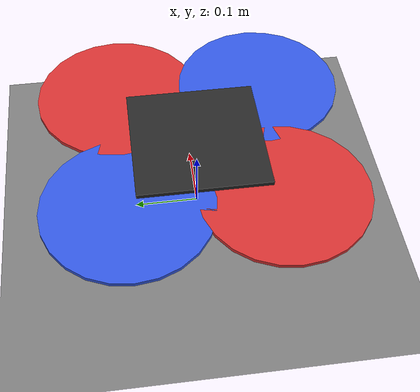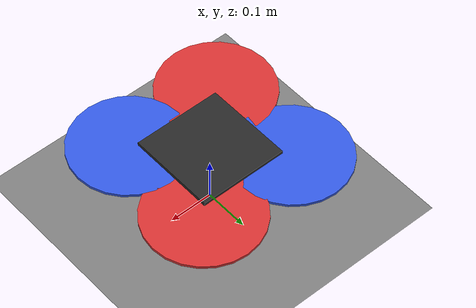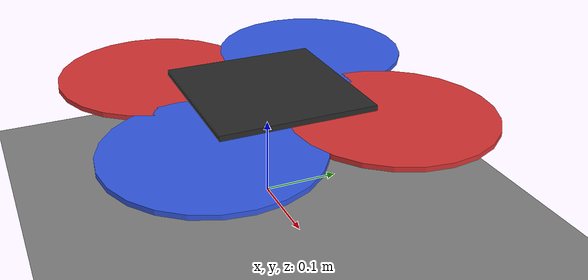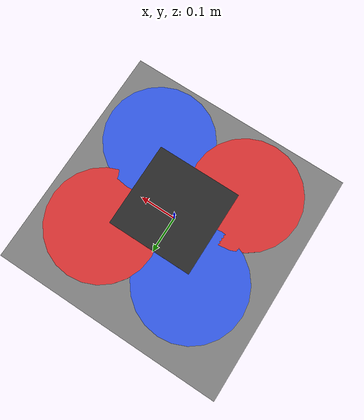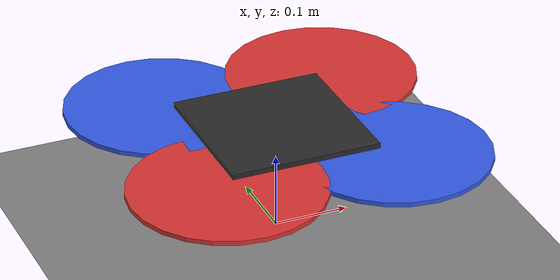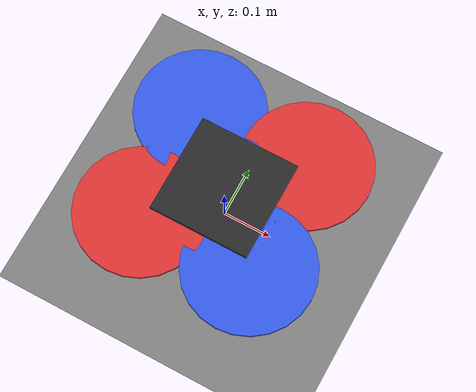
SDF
<?xml version="1.0" ?>
<sdf version="1.9">
  <world name="fx450_qc_0kg">

    <!-- 1 kHz 고정 스텝: 골든 트레이스 기준. 가변 스텝 금지 (PID 이산화가 후방차분). -->
    <physics name="1ms" type="ignored">
      <max_step_size>0.001</max_step_size>
      <real_time_factor>0</real_time_factor>
    </physics>

    <plugin filename="gz-sim-physics-system" name="gz::sim::systems::Physics"/>
    <plugin filename="gz-sim-scene-broadcaster-system" name="gz::sim::systems::SceneBroadcaster"/>
    <plugin filename="gz-sim-user-commands-system" name="gz::sim::systems::UserCommands"/>

    <plugin filename="gz-sim-apply-link-wrench-system" name="gz::sim::systems::ApplyLinkWrench"/>

    <gravity>0 0 -9.81</gravity>
    <light type="directional" name="sun">
      <cast_shadows>true</cast_shadows><pose>0 0 10 0 0 0</pose>
      <diffuse>1 1 1 1</diffuse><specular>0.4 0.4 0.4 1</specular>
      <direction>-0.5 0.1 -0.9</direction>
    </light>

    <model name="ground_plane">
      <static>true</static>
      <link name="link">
        <collision name="collision">
          <geometry><plane><normal>0 0 1</normal><size>80 80</size></plane></geometry>
        </collision>
        <visual name="visual">
          <geometry><plane><normal>0 0 1</normal><size>80 80</size></plane></geometry>
          <material><ambient>0.3 0.3 0.3 1</ambient><diffuse>0.5 0.5 0.5 1</diffuse></material>
        </visual>
      </link>
    </model>

    <model name="fx450">
      <pose>0 0 0.12 0 0 0</pose>
      <link name="base_link">
        <inertial>
          <pose>0 0 0.0077290 0 0 0</pose>
          <mass>1.2726000</mass>
          <inertia>
            <ixx>9.3343219e-03</ixx><iyy>9.3843219e-03</iyy><izz>1.7969498e-02</izz>
            <ixy>0</ixy><ixz>0</ixz><iyz>0</iyz>
          </inertia>
        </inertial>
        <collision name="body_col">
          <geometry><box><size>0.20 0.20 0.06</size></box></geometry>
        </collision>
        <visual name="body">
          <geometry><box><size>0.20 0.20 0.06</size></box></geometry>
          <material><ambient>0.1 0.1 0.1 1</ambient><diffuse>0.16 0.16 0.16 1</diffuse></material>
        </visual>
        <visual name="arm_1">
          <pose>-0.0562 -0.0562 0.0100 0 1.5708 -2.3562</pose>
          <geometry><cylinder><radius>0.009</radius><length>0.1591</length></cylinder></geometry>
          <material><diffuse>0.25 0.25 0.25 1</diffuse></material>
        </visual>
        <visual name="rotor_1">
          <pose>-0.1125 -0.1125 0.0200 0 0 0</pose>
          <geometry><cylinder><radius>0.127</radius><length>0.006</length></cylinder></geometry>
          <material><ambient>0.85 0.2 0.2 1</ambient><diffuse>0.85 0.2 0.2 1</diffuse></material>
        </visual>
        <visual name="arm_2">
          <pose>-0.0562 0.0562 0.0100 0 1.5708 2.3562</pose>
          <geometry><cylinder><radius>0.009</radius><length>0.1591</length></cylinder></geometry>
          <material><diffuse>0.25 0.25 0.25 1</diffuse></material>
        </visual>
        <visual name="rotor_2">
          <pose>-0.1125 0.1125 0.0200 0 0 0</pose>
          <geometry><cylinder><radius>0.127</radius><length>0.006</length></cylinder></geometry>
          <material><ambient>0.2 0.35 0.9 1</ambient><diffuse>0.2 0.35 0.9 1</diffuse></material>
        </visual>
        <visual name="arm_3">
          <pose>0.0562 -0.0562 0.0100 0 1.5708 -0.7854</pose>
          <geometry><cylinder><radius>0.009</radius><length>0.1591</length></cylinder></geometry>
          <material><diffuse>0.25 0.25 0.25 1</diffuse></material>
        </visual>
        <visual name="rotor_3">
          <pose>0.1125 -0.1125 0.0200 0 0 0</pose>
          <geometry><cylinder><radius>0.127</radius><length>0.006</length></cylinder></geometry>
          <material><ambient>0.2 0.35 0.9 1</ambient><diffuse>0.2 0.35 0.9 1</diffuse></material>
        </visual>
        <visual name="arm_4">
          <pose>0.0562 0.0562 0.0100 0 1.5708 0.7854</pose>
          <geometry><cylinder><radius>0.009</radius><length>0.1591</length></cylinder></geometry>
          <material><diffuse>0.25 0.25 0.25 1</diffuse></material>
        </visual>
        <visual name="rotor_4">
          <pose>0.1125 0.1125 0.0200 0 0 0</pose>
          <geometry><cylinder><radius>0.127</radius><length>0.006</length></cylinder></geometry>
          <material><ambient>0.85 0.2 0.2 1</ambient><diffuse>0.85 0.2 0.2 1</diffuse></material>
        </visual>
      </link>

      <!-- 제어기 + 플랜트 접합. 모든 값은 QC_* 환경변수로 덮어쓸 수 있다
           (scripts/run_case.sh 가 그렇게 쓴다 - 월드 파일은 안 건드림). -->
      <plugin filename="qc_gz_controller" name="qc::QcGzController">
        <link>base_link</link>
        <mode>hover</mode>
        <pkgMass>0.0000</pkgMass>
        <profile>precision</profile>
        <armXY>0.112500</armXY>
        <rotorZ>0.020000</rotorZ>
        <comZ>0.0077290</comZ>
        <mixerTable>measured</mixerTable>
        <!-- 저질량은 질량 1차식이 없으면 뜨지 못한다: 무보정 biasChassis 56.5
             rev/s = 추력 6.98 N < 생 드론 무게 12.48 N. 1차식 0 kg 앵커 75.5 가
             필요한 75.6 과 맞는다. precision 프로파일에서만 안전 (프로파일 충돌). -->
        <massLerpOn>true</massLerpOn>
        <hoverZ>1.0</hoverZ>
        <controlRateHz>1000</controlRateHz>
        <logRateHz>200</logRateHz>
        <log>gz_run.csv</log>
      </plugin>
    </model>

  </world>
</sdf>
